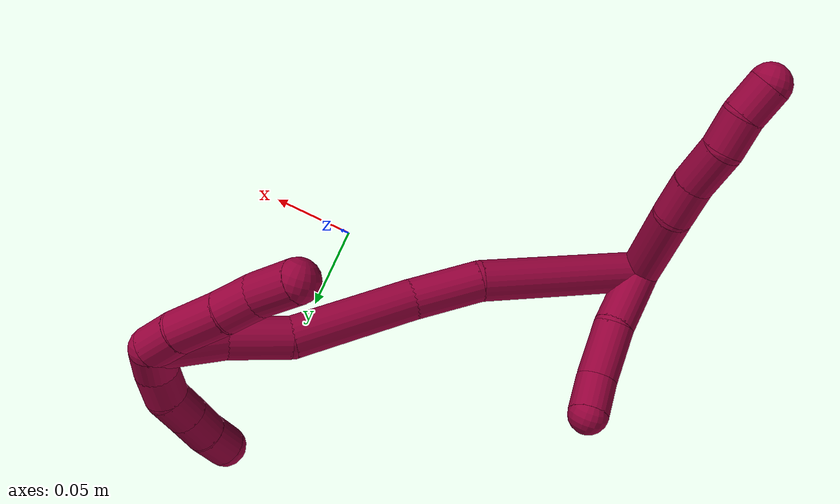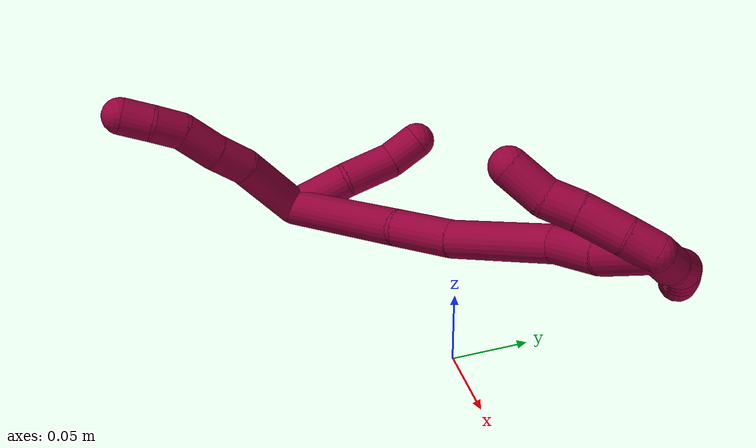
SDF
<sdf version="1.7">
 <world name="default">
  <model name="8">
   <static>0</static>
   <link name="8">
    <collision name="collision-cylinder-e_1_2_8">
     <pose>0.00603 -0.016203 -0.021461 2.49489 0.220593 0.638351</pose>
     <geometry><cylinder><radius>0.0125</radius><length>0.055117</length></cylinder></geometry>
     <surface>
      <friction><ode><mu>1.16</mu><mu2>1.16</mu2><slip1>0</slip1><slip2>0</slip2></ode></friction>
      <contact><ode><kp>1e+06</kp><kd>1</kd><max_vel>0</max_vel><min_depth>0.001</min_depth></ode></contact>
     </surface>
    </collision>
    <visual name="visual-cylinder-e_1_2_8">
     <pose>0.00603 -0.016203 -0.021461 2.49489 0.220593 0.638351</pose>
     <geometry><cylinder><radius>0.0125</radius><length>0.055117</length></cylinder></geometry>
     <material><ambient>0.584314 0 0.227451 1</ambient></material>
    </visual>
    <collision name="collision-cylinder-e_2_8_9">
     <pose>0.012882 -0.037883 -0.054023 2.68325 0.066303 0.282444</pose>
     <geometry><cylinder><radius>0.0125</radius><length>0.024813</length></cylinder></geometry>
     <surface>
      <friction><ode><mu>1.16</mu><mu2>1.16</mu2><slip1>0</slip1><slip2>0</slip2></ode></friction>
      <contact><ode><kp>1e+06</kp><kd>1</kd><max_vel>0</max_vel><min_depth>0.001</min_depth></ode></contact>
     </surface>
    </collision>
    <visual name="visual-cylinder-e_2_8_9">
     <pose>0.012882 -0.037883 -0.054023 2.68325 0.066303 0.282444</pose>
     <geometry><cylinder><radius>0.0125</radius><length>0.024813</length></cylinder></geometry>
     <material><ambient>0.584314 0 0.227451 1</ambient></material>
    </visual>
    <collision name="collision-cylinder-e_3_9_10">
     <pose>0.013728 -0.050895 -0.0769 2.57246 0.001703 0.005822</pose>
     <geometry><cylinder><radius>0.0125</radius><length>0.02796</length></cylinder></geometry>
     <surface>
      <friction><ode><mu>1.16</mu><mu2>1.16</mu2><slip1>0</slip1><slip2>0</slip2></ode></friction>
      <contact><ode><kp>1e+06</kp><kd>1</kd><max_vel>0</max_vel><min_depth>0.001</min_depth></ode></contact>
     </surface>
    </collision>
    <visual name="visual-cylinder-e_3_9_10">
     <pose>0.013728 -0.050895 -0.0769 2.57246 0.001703 0.005822</pose>
     <geometry><cylinder><radius>0.0125</radius><length>0.02796</length></cylinder></geometry>
     <material><ambient>0.584314 0 0.227451 1</ambient></material>
    </visual>
    <collision name="collision-cylinder-e_4_10_11">
     <pose>0.013363 -0.061279 -0.099012 2.87244 -0.036252 -0.266193</pose>
     <geometry><cylinder><radius>0.0125</radius><length>0.021457</length></cylinder></geometry>
     <surface>
      <friction><ode><mu>1.16</mu><mu2>1.16</mu2><slip1>0</slip1><slip2>0</slip2></ode></friction>
      <contact><ode><kp>1e+06</kp><kd>1</kd><max_vel>0</max_vel><min_depth>0.001</min_depth></ode></contact>
     </surface>
    </collision>
    <visual name="visual-cylinder-e_4_10_11">
     <pose>0.013363 -0.061279 -0.099012 2.87244 -0.036252 -0.266193</pose>
     <geometry><cylinder><radius>0.0125</radius><length>0.021457</length></cylinder></geometry>
     <material><ambient>0.584314 0 0.227451 1</ambient></material>
    </visual>
    <collision name="collision-cylinder-e_5_11_6">
     <pose>0.010302 -0.066539 -0.119028 2.8977 -0.261682 -1.64191</pose>
     <geometry><cylinder><radius>0.0125</radius><length>0.020653</length></cylinder></geometry>
     <surface>
      <friction><ode><mu>1.16</mu><mu2>1.16</mu2><slip1>0</slip1><slip2>0</slip2></ode></friction>
      <contact><ode><kp>1e+06</kp><kd>1</kd><max_vel>0</max_vel><min_depth>0.001</min_depth></ode></contact>
     </surface>
    </collision>
    <visual name="visual-cylinder-e_5_11_6">
     <pose>0.010302 -0.066539 -0.119028 2.8977 -0.261682 -1.64191</pose>
     <geometry><cylinder><radius>0.0125</radius><length>0.020653</length></cylinder></geometry>
     <material><ambient>0.584314 0 0.227451 1</ambient></material>
    </visual>
    <collision name="collision-cylinder-e_1_2_12">
     <pose>0.007649 -0.009963 0.01664 0.539491 0.375659 0.105006</pose>
     <geometry><cylinder><radius>0.0125</radius><length>0.041697</length></cylinder></geometry>
     <surface>
      <friction><ode><mu>1.16</mu><mu2>1.16</mu2><slip1>0</slip1><slip2>0</slip2></ode></friction>
      <contact><ode><kp>1e+06</kp><kd>1</kd><max_vel>0</max_vel><min_depth>0.001</min_depth></ode></contact>
     </surface>
    </collision>
    <visual name="visual-cylinder-e_1_2_12">
     <pose>0.007649 -0.009963 0.01664 0.539491 0.375659 0.105006</pose>
     <geometry><cylinder><radius>0.0125</radius><length>0.041697</length></cylinder></geometry>
     <material><ambient>0.584314 0 0.227451 1</ambient></material>
    </visual>
    <collision name="collision-cylinder-e_2_12_13">
     <pose>0.018478 -0.026732 0.048972 0.409244 0.183823 0.038251</pose>
     <geometry><cylinder><radius>0.0125</radius><length>0.034795</length></cylinder></geometry>
     <surface>
      <friction><ode><mu>1.16</mu><mu2>1.16</mu2><slip1>0</slip1><slip2>0</slip2></ode></friction>
      <contact><ode><kp>1e+06</kp><kd>1</kd><max_vel>0</max_vel><min_depth>0.001</min_depth></ode></contact>
     </surface>
    </collision>
    <visual name="visual-cylinder-e_2_12_13">
     <pose>0.018478 -0.026732 0.048972 0.409244 0.183823 0.038251</pose>
     <geometry><cylinder><radius>0.0125</radius><length>0.034795</length></cylinder></geometry>
     <material><ambient>0.584314 0 0.227451 1</ambient></material>
    </visual>
    <collision name="collision-cylinder-e_3_13_5">
     <pose>0.024495 -0.040706 0.073537 0.679477 0.243761 0.086531</pose>
     <geometry><cylinder><radius>0.0125</radius><length>0.023508</length></cylinder></geometry>
     <surface>
      <friction><ode><mu>1.16</mu><mu2>1.16</mu2><slip1>0</slip1><slip2>0</slip2></ode></friction>
      <contact><ode><kp>1e+06</kp><kd>1</kd><max_vel>0</max_vel><min_depth>0.001</min_depth></ode></contact>
     </surface>
    </collision>
    <visual name="visual-cylinder-e_3_13_5">
     <pose>0.024495 -0.040706 0.073537 0.679477 0.243761 0.086531</pose>
     <geometry><cylinder><radius>0.0125</radius><length>0.023508</length></cylinder></geometry>
     <material><ambient>0.584314 0 0.227451 1</ambient></material>
    </visual>
    <collision name="collision-cylinder-e_1_2_14">
     <pose>0.050523 -9.1e-05 0.015357 0.005904 1.2757 0.004376</pose>
     <geometry><cylinder><radius>0.0125</radius><length>0.105611</length></cylinder></geometry>
     <surface>
      <friction><ode><mu>1.16</mu><mu2>1.16</mu2><slip1>0</slip1><slip2>0</slip2></ode></friction>
      <contact><ode><kp>1e+06</kp><kd>1</kd><max_vel>0</max_vel><min_depth>0.001</min_depth></ode></contact>
     </surface>
    </collision>
    <visual name="visual-cylinder-e_1_2_14">
     <pose>0.050523 -9.1e-05 0.015357 0.005904 1.2757 0.004376</pose>
     <geometry><cylinder><radius>0.0125</radius><length>0.105611</length></cylinder></geometry>
     <material><ambient>0.584314 0 0.227451 1</ambient></material>
    </visual>
    <collision name="collision-cylinder-e_2_14_15">
     <pose>0.119061 0.001024 0.041284 -0.113581 1.03739 -0.064882</pose>
     <geometry><cylinder><radius>0.0125</radius><length>0.041843</length></cylinder></geometry>
     <surface>
      <friction><ode><mu>1.16</mu><mu2>1.16</mu2><slip1>0</slip1><slip2>0</slip2></ode></friction>
      <contact><ode><kp>1e+06</kp><kd>1</kd><max_vel>0</max_vel><min_depth>0.001</min_depth></ode></contact>
     </surface>
    </collision>
    <visual name="visual-cylinder-e_2_14_15">
     <pose>0.119061 0.001024 0.041284 -0.113581 1.03739 -0.064882</pose>
     <geometry><cylinder><radius>0.0125</radius><length>0.041843</length></cylinder></geometry>
     <material><ambient>0.584314 0 0.227451 1</ambient></material>
    </visual>
    <collision name="collision-cylinder-e_3_15_16">
     <pose>0.169397 -0.000796 0.070306 0.16255 1.04631 0.09389</pose>
     <geometry><cylinder><radius>0.0125</radius><length>0.074682</length></cylinder></geometry>
     <surface>
      <friction><ode><mu>1.16</mu><mu2>1.16</mu2><slip1>0</slip1><slip2>0</slip2></ode></friction>
      <contact><ode><kp>1e+06</kp><kd>1</kd><max_vel>0</max_vel><min_depth>0.001</min_depth></ode></contact>
     </surface>
    </collision>
    <visual name="visual-cylinder-e_3_15_16">
     <pose>0.169397 -0.000796 0.070306 0.16255 1.04631 0.09389</pose>
     <geometry><cylinder><radius>0.0125</radius><length>0.074682</length></cylinder></geometry>
     <material><ambient>0.584314 0 0.227451 1</ambient></material>
    </visual>
    <collision name="collision-cylinder-e_4_16_17">
     <pose>0.219715 -0.003255 0.09302 -0.132304 1.33631 -0.104479</pose>
     <geometry><cylinder><radius>0.0125</radius><length>0.037004</length></cylinder></geometry>
     <surface>
      <friction><ode><mu>1.16</mu><mu2>1.16</mu2><slip1>0</slip1><slip2>0</slip2></ode></friction>
      <contact><ode><kp>1e+06</kp><kd>1</kd><max_vel>0</max_vel><min_depth>0.001</min_depth></ode></contact>
     </surface>
    </collision>
    <visual name="visual-cylinder-e_4_16_17">
     <pose>0.219715 -0.003255 0.09302 -0.132304 1.33631 -0.104479</pose>
     <geometry><cylinder><radius>0.0125</radius><length>0.037004</length></cylinder></geometry>
     <material><ambient>0.584314 0 0.227451 1</ambient></material>
    </visual>
    <collision name="collision-cylinder-e_5_17_1">
     <pose>0.256933 -0.006709 0.102914 0.619926 1.22519 0.442808</pose>
     <geometry><cylinder><radius>0.0125</radius><length>0.04086</length></cylinder></geometry>
     <surface>
      <friction><ode><mu>1.16</mu><mu2>1.16</mu2><slip1>0</slip1><slip2>0</slip2></ode></friction>
      <contact><ode><kp>1e+06</kp><kd>1</kd><max_vel>0</max_vel><min_depth>0.001</min_depth></ode></contact>
     </surface>
    </collision>
    <visual name="visual-cylinder-e_5_17_1">
     <pose>0.256933 -0.006709 0.102914 0.619926 1.22519 0.442808</pose>
     <geometry><cylinder><radius>0.0125</radius><length>0.04086</length></cylinder></geometry>
     <material><ambient>0.584314 0 0.227451 1</ambient></material>
    </visual>
    <collision name="collision-cylinder-e_1_1_18">
     <pose>0.271212 -0.015419 0.10094 2.58921 -0.50518 -1.47731</pose>
     <geometry><cylinder><radius>0.0125</radius><length>0.020425</length></cylinder></geometry>
     <surface>
      <friction><ode><mu>1.16</mu><mu2>1.16</mu2><slip1>0</slip1><slip2>0</slip2></ode></friction>
      <contact><ode><kp>1e+06</kp><kd>1</kd><max_vel>0</max_vel><min_depth>0.001</min_depth></ode></contact>
     </surface>
    </collision>
    <visual name="visual-cylinder-e_1_1_18">
     <pose>0.271212 -0.015419 0.10094 2.58921 -0.50518 -1.47731</pose>
     <geometry><cylinder><radius>0.0125</radius><length>0.020425</length></cylinder></geometry>
     <material><ambient>0.584314 0 0.227451 1</ambient></material>
    </visual>
    <collision name="collision-cylinder-e_2_18_19">
     <pose>0.257201 -0.026312 0.08326 2.58959 -0.654064 -1.75019</pose>
     <geometry><cylinder><radius>0.0125</radius><length>0.029809</length></cylinder></geometry>
     <surface>
      <friction><ode><mu>1.16</mu><mu2>1.16</mu2><slip1>0</slip1><slip2>0</slip2></ode></friction>
      <contact><ode><kp>1e+06</kp><kd>1</kd><max_vel>0</max_vel><min_depth>0.001</min_depth></ode></contact>
     </surface>
    </collision>
    <visual name="visual-cylinder-e_2_18_19">
     <pose>0.257201 -0.026312 0.08326 2.58959 -0.654064 -1.75019</pose>
     <geometry><cylinder><radius>0.0125</radius><length>0.029809</length></cylinder></geometry>
     <material><ambient>0.584314 0 0.227451 1</ambient></material>
    </visual>
    <collision name="collision-cylinder-e_3_19_20">
     <pose>0.241384 -0.036009 0.0654 2.71977 -0.669011 -2.0374</pose>
     <geometry><cylinder><radius>0.0125</radius><length>0.021766</length></cylinder></geometry>
     <surface>
      <friction><ode><mu>1.16</mu><mu2>1.16</mu2><slip1>0</slip1><slip2>0</slip2></ode></friction>
      <contact><ode><kp>1e+06</kp><kd>1</kd><max_vel>0</max_vel><min_depth>0.001</min_depth></ode></contact>
     </surface>
    </collision>
    <visual name="visual-cylinder-e_3_19_20">
     <pose>0.241384 -0.036009 0.0654 2.71977 -0.669011 -2.0374</pose>
     <geometry><cylinder><radius>0.0125</radius><length>0.021766</length></cylinder></geometry>
     <material><ambient>0.584314 0 0.227451 1</ambient></material>
    </visual>
    <collision name="collision-cylinder-e_4_20_4">
     <pose>0.227573 -0.048073 0.049084 2.35383 -0.528641 -1.15449</pose>
     <geometry><cylinder><radius>0.0125</radius><length>0.028</length></cylinder></geometry>
     <surface>
      <friction><ode><mu>1.16</mu><mu2>1.16</mu2><slip1>0</slip1><slip2>0</slip2></ode></friction>
      <contact><ode><kp>1e+06</kp><kd>1</kd><max_vel>0</max_vel><min_depth>0.001</min_depth></ode></contact>
     </surface>
    </collision>
    <visual name="visual-cylinder-e_4_20_4">
     <pose>0.227573 -0.048073 0.049084 2.35383 -0.528641 -1.15449</pose>
     <geometry><cylinder><radius>0.0125</radius><length>0.028</length></cylinder></geometry>
     <material><ambient>0.584314 0 0.227451 1</ambient></material>
    </visual>
    <collision name="collision-cylinder-e_1_1_21">
     <pose>0.272683 -0.005791 0.11652 -0.554655 -0.354567 0.101915</pose>
     <geometry><cylinder><radius>0.0125</radius><length>0.02</length></cylinder></geometry>
     <surface>
      <friction><ode><mu>1.16</mu><mu2>1.16</mu2><slip1>0</slip1><slip2>0</slip2></ode></friction>
      <contact><ode><kp>1e+06</kp><kd>1</kd><max_vel>0</max_vel><min_depth>0.001</min_depth></ode></contact>
     </surface>
    </collision>
    <visual name="visual-cylinder-e_1_1_21">
     <pose>0.272683 -0.005791 0.11652 -0.554655 -0.354567 0.101915</pose>
     <geometry><cylinder><radius>0.0125</radius><length>0.02</length></cylinder></geometry>
     <material><ambient>0.584314 0 0.227451 1</ambient></material>
    </visual>
    <collision name="collision-cylinder-e_2_21_22">
     <pose>0.264157 0.001722 0.132728 -0.302976 -0.529837 0.082783</pose>
     <geometry><cylinder><radius>0.0125</radius><length>0.02</length></cylinder></geometry>
     <surface>
      <friction><ode><mu>1.16</mu><mu2>1.16</mu2><slip1>0</slip1><slip2>0</slip2></ode></friction>
      <contact><ode><kp>1e+06</kp><kd>1</kd><max_vel>0</max_vel><min_depth>0.001</min_depth></ode></contact>
     </surface>
    </collision>
    <visual name="visual-cylinder-e_2_21_22">
     <pose>0.264157 0.001722 0.132728 -0.302976 -0.529837 0.082783</pose>
     <geometry><cylinder><radius>0.0125</radius><length>0.02</length></cylinder></geometry>
     <material><ambient>0.584314 0 0.227451 1</ambient></material>
    </visual>
    <collision name="collision-cylinder-e_3_22_23">
     <pose>0.251668 0.007527 0.146818 -0.504119 -0.838366 0.228513</pose>
     <geometry><cylinder><radius>0.0125</radius><length>0.02</length></cylinder></geometry>
     <surface>
      <friction><ode><mu>1.16</mu><mu2>1.16</mu2><slip1>0</slip1><slip2>0</slip2></ode></friction>
      <contact><ode><kp>1e+06</kp><kd>1</kd><max_vel>0</max_vel><min_depth>0.001</min_depth></ode></contact>
     </surface>
    </collision>
    <visual name="visual-cylinder-e_3_22_23">
     <pose>0.251668 0.007527 0.146818 -0.504119 -0.838366 0.228513</pose>
     <geometry><cylinder><radius>0.0125</radius><length>0.02</length></cylinder></geometry>
     <material><ambient>0.584314 0 0.227451 1</ambient></material>
    </visual>
    <collision name="collision-cylinder-e_4_23_24">
     <pose>0.23685 0.013869 0.158658 -0.479594 -0.830461 0.214755</pose>
     <geometry><cylinder><radius>0.0125</radius><length>0.02</length></cylinder></geometry>
     <surface>
      <friction><ode><mu>1.16</mu><mu2>1.16</mu2><slip1>0</slip1><slip2>0</slip2></ode></friction>
      <contact><ode><kp>1e+06</kp><kd>1</kd><max_vel>0</max_vel><min_depth>0.001</min_depth></ode></contact>
     </surface>
    </collision>
    <visual name="visual-cylinder-e_4_23_24">
     <pose>0.23685 0.013869 0.158658 -0.479594 -0.830461 0.214755</pose>
     <geometry><cylinder><radius>0.0125</radius><length>0.02</length></cylinder></geometry>
     <material><ambient>0.584314 0 0.227451 1</ambient></material>
    </visual>
    <collision name="collision-cylinder-e_5_24_3">
     <pose>0.221791 0.020844 0.169756 -0.646899 -0.875115 0.3111</pose>
     <geometry><cylinder><radius>0.0125</radius><length>0.02</length></cylinder></geometry>
     <surface>
      <friction><ode><mu>1.16</mu><mu2>1.16</mu2><slip1>0</slip1><slip2>0</slip2></ode></friction>
      <contact><ode><kp>1e+06</kp><kd>1</kd><max_vel>0</max_vel><min_depth>0.001</min_depth></ode></contact>
     </surface>
    </collision>
    <visual name="visual-cylinder-e_5_24_3">
     <pose>0.221791 0.020844 0.169756 -0.646899 -0.875115 0.3111</pose>
     <geometry><cylinder><radius>0.0125</radius><length>0.02</length></cylinder></geometry>
     <material><ambient>0.584314 0 0.227451 1</ambient></material>
    </visual>
    <collision name="collision-sphere-3">
     <pose>0.214115 0.024707 0.17487 0 -0 0</pose>
     <geometry><sphere><radius>0.0125</radius></sphere></geometry>
     <surface>
      <friction><ode><mu>1.16</mu><mu2>1.16</mu2><slip1>0</slip1><slip2>0</slip2></ode></friction>
      <contact><ode><kp>1e+06</kp><kd>1</kd><max_vel>0</max_vel><min_depth>0.001</min_depth></ode></contact>
     </surface>
    </collision>
    <visual name="visual-sphere-3">
     <pose>0.214115 0.024707 0.17487 0 -0 0</pose>
     <geometry><sphere><radius>0.0125</radius></sphere></geometry>
     <material><ambient>0.584314 0 0.227451 1</ambient></material>
    </visual>
    <collision name="collision-sphere-24">
     <pose>0.229467 0.016982 0.164642 0 -0 0</pose>
     <geometry><sphere><radius>0.0125</radius></sphere></geometry>
     <surface>
      <friction><ode><mu>1.16</mu><mu2>1.16</mu2><slip1>0</slip1><slip2>0</slip2></ode></friction>
      <contact><ode><kp>1e+06</kp><kd>1</kd><max_vel>0</max_vel><min_depth>0.001</min_depth></ode></contact>
     </surface>
    </collision>
    <visual name="visual-sphere-24">
     <pose>0.229467 0.016982 0.164642 0 -0 0</pose>
     <geometry><sphere><radius>0.0125</radius></sphere></geometry>
     <material><ambient>0.584314 0 0.227451 1</ambient></material>
    </visual>
    <collision name="collision-sphere-23">
     <pose>0.244232 0.010757 0.152673 0 -0 0</pose>
     <geometry><sphere><radius>0.0125</radius></sphere></geometry>
     <surface>
      <friction><ode><mu>1.16</mu><mu2>1.16</mu2><slip1>0</slip1><slip2>0</slip2></ode></friction>
      <contact><ode><kp>1e+06</kp><kd>1</kd><max_vel>0</max_vel><min_depth>0.001</min_depth></ode></contact>
     </surface>
    </collision>
    <visual name="visual-sphere-23">
     <pose>0.244232 0.010757 0.152673 0 -0 0</pose>
     <geometry><sphere><radius>0.0125</radius></sphere></geometry>
     <material><ambient>0.584314 0 0.227451 1</ambient></material>
    </visual>
    <collision name="collision-sphere-22">
     <pose>0.259103 0.004297 0.140963 0 -0 0</pose>
     <geometry><sphere><radius>0.0125</radius></sphere></geometry>
     <surface>
      <friction><ode><mu>1.16</mu><mu2>1.16</mu2><slip1>0</slip1><slip2>0</slip2></ode></friction>
      <contact><ode><kp>1e+06</kp><kd>1</kd><max_vel>0</max_vel><min_depth>0.001</min_depth></ode></contact>
     </surface>
    </collision>
    <visual name="visual-sphere-22">
     <pose>0.259103 0.004297 0.140963 0 -0 0</pose>
     <geometry><sphere><radius>0.0125</radius></sphere></geometry>
     <material><ambient>0.584314 0 0.227451 1</ambient></material>
    </visual>
    <collision name="collision-sphere-21">
     <pose>0.269211 -0.000852 0.124492 0 -0 0</pose>
     <geometry><sphere><radius>0.0125</radius></sphere></geometry>
     <surface>
      <friction><ode><mu>1.16</mu><mu2>1.16</mu2><slip1>0</slip1><slip2>0</slip2></ode></friction>
      <contact><ode><kp>1e+06</kp><kd>1</kd><max_vel>0</max_vel><min_depth>0.001</min_depth></ode></contact>
     </surface>
    </collision>
    <visual name="visual-sphere-21">
     <pose>0.269211 -0.000852 0.124492 0 -0 0</pose>
     <geometry><sphere><radius>0.0125</radius></sphere></geometry>
     <material><ambient>0.584314 0 0.227451 1</ambient></material>
    </visual>
    <collision name="collision-sphere-4">
     <pose>0.220512 -0.056641 0.040556 0 -0 0</pose>
     <geometry><sphere><radius>0.0125</radius></sphere></geometry>
     <surface>
      <friction><ode><mu>1.16</mu><mu2>1.16</mu2><slip1>0</slip1><slip2>0</slip2></ode></friction>
      <contact><ode><kp>1e+06</kp><kd>1</kd><max_vel>0</max_vel><min_depth>0.001</min_depth></ode></contact>
     </surface>
    </collision>
    <visual name="visual-sphere-4">
     <pose>0.220512 -0.056641 0.040556 0 -0 0</pose>
     <geometry><sphere><radius>0.0125</radius></sphere></geometry>
     <material><ambient>0.584314 0 0.227451 1</ambient></material>
    </visual>
    <collision name="collision-sphere-20">
     <pose>0.234634 -0.039505 0.057612 0 -0 0</pose>
     <geometry><sphere><radius>0.0125</radius></sphere></geometry>
     <surface>
      <friction><ode><mu>1.16</mu><mu2>1.16</mu2><slip1>0</slip1><slip2>0</slip2></ode></friction>
      <contact><ode><kp>1e+06</kp><kd>1</kd><max_vel>0</max_vel><min_depth>0.001</min_depth></ode></contact>
     </surface>
    </collision>
    <visual name="visual-sphere-20">
     <pose>0.234634 -0.039505 0.057612 0 -0 0</pose>
     <geometry><sphere><radius>0.0125</radius></sphere></geometry>
     <material><ambient>0.584314 0 0.227451 1</ambient></material>
    </visual>
    <collision name="collision-sphere-6">
     <pose>0.007631 -0.068948 -0.128708 0 -0 0</pose>
     <geometry><sphere><radius>0.0125</radius></sphere></geometry>
     <surface>
      <friction><ode><mu>1.16</mu><mu2>1.16</mu2><slip1>0</slip1><slip2>0</slip2></ode></friction>
      <contact><ode><kp>1e+06</kp><kd>1</kd><max_vel>0</max_vel><min_depth>0.001</min_depth></ode></contact>
     </surface>
    </collision>
    <visual name="visual-sphere-6">
     <pose>0.007631 -0.068948 -0.128708 0 -0 0</pose>
     <geometry><sphere><radius>0.0125</radius></sphere></geometry>
     <material><ambient>0.584314 0 0.227451 1</ambient></material>
    </visual>
    <collision name="collision-sphere-11">
     <pose>0.012974 -0.06413 -0.109348 0 -0 0</pose>
     <geometry><sphere><radius>0.0125</radius></sphere></geometry>
     <surface>
      <friction><ode><mu>1.16</mu><mu2>1.16</mu2><slip1>0</slip1><slip2>0</slip2></ode></friction>
      <contact><ode><kp>1e+06</kp><kd>1</kd><max_vel>0</max_vel><min_depth>0.001</min_depth></ode></contact>
     </surface>
    </collision>
    <visual name="visual-sphere-11">
     <pose>0.012974 -0.06413 -0.109348 0 -0 0</pose>
     <geometry><sphere><radius>0.0125</radius></sphere></geometry>
     <material><ambient>0.584314 0 0.227451 1</ambient></material>
    </visual>
    <collision name="collision-sphere-10">
     <pose>0.013751 -0.058428 -0.088677 0 -0 0</pose>
     <geometry><sphere><radius>0.0125</radius></sphere></geometry>
     <surface>
      <friction><ode><mu>1.16</mu><mu2>1.16</mu2><slip1>0</slip1><slip2>0</slip2></ode></friction>
      <contact><ode><kp>1e+06</kp><kd>1</kd><max_vel>0</max_vel><min_depth>0.001</min_depth></ode></contact>
     </surface>
    </collision>
    <visual name="visual-sphere-10">
     <pose>0.013751 -0.058428 -0.088677 0 -0 0</pose>
     <geometry><sphere><radius>0.0125</radius></sphere></geometry>
     <material><ambient>0.584314 0 0.227451 1</ambient></material>
    </visual>
    <collision name="collision-sphere-9">
     <pose>0.013704 -0.043361 -0.065124 0 -0 0</pose>
     <geometry><sphere><radius>0.0125</radius></sphere></geometry>
     <surface>
      <friction><ode><mu>1.16</mu><mu2>1.16</mu2><slip1>0</slip1><slip2>0</slip2></ode></friction>
      <contact><ode><kp>1e+06</kp><kd>1</kd><max_vel>0</max_vel><min_depth>0.001</min_depth></ode></contact>
     </surface>
    </collision>
    <visual name="visual-sphere-9">
     <pose>0.013704 -0.043361 -0.065124 0 -0 0</pose>
     <geometry><sphere><radius>0.0125</radius></sphere></geometry>
     <material><ambient>0.584314 0 0.227451 1</ambient></material>
    </visual>
    <collision name="collision-sphere-2">
     <geometry><sphere><radius>0.0125</radius></sphere></geometry>
     <surface>
      <friction><ode><mu>1.16</mu><mu2>1.16</mu2><slip1>0</slip1><slip2>0</slip2></ode></friction>
      <contact><ode><kp>1e+06</kp><kd>1</kd><max_vel>0</max_vel><min_depth>0.001</min_depth></ode></contact>
     </surface>
    </collision>
    <visual name="visual-sphere-2">
     <geometry><sphere><radius>0.0125</radius></sphere></geometry>
     <material><ambient>0.584314 0 0.227451 1</ambient></material>
    </visual>
    <collision name="collision-sphere-19">
     <pose>0.248133 -0.032514 0.073189 0 -0 0</pose>
     <geometry><sphere><radius>0.0125</radius></sphere></geometry>
     <surface>
      <friction><ode><mu>1.16</mu><mu2>1.16</mu2><slip1>0</slip1><slip2>0</slip2></ode></friction>
      <contact><ode><kp>1e+06</kp><kd>1</kd><max_vel>0</max_vel><min_depth>0.001</min_depth></ode></contact>
     </surface>
    </collision>
    <visual name="visual-sphere-19">
     <pose>0.248133 -0.032514 0.073189 0 -0 0</pose>
     <geometry><sphere><radius>0.0125</radius></sphere></geometry>
     <material><ambient>0.584314 0 0.227451 1</ambient></material>
    </visual>
    <collision name="collision-sphere-8">
     <pose>0.01206 -0.032406 -0.042921 0 -0 0</pose>
     <geometry><sphere><radius>0.0125</radius></sphere></geometry>
     <surface>
      <friction><ode><mu>1.16</mu><mu2>1.16</mu2><slip1>0</slip1><slip2>0</slip2></ode></friction>
      <contact><ode><kp>1e+06</kp><kd>1</kd><max_vel>0</max_vel><min_depth>0.001</min_depth></ode></contact>
     </surface>
    </collision>
    <visual name="visual-sphere-8">
     <pose>0.01206 -0.032406 -0.042921 0 -0 0</pose>
     <geometry><sphere><radius>0.0125</radius></sphere></geometry>
     <material><ambient>0.584314 0 0.227451 1</ambient></material>
    </visual>
    <collision name="collision-sphere-12">
     <pose>0.015298 -0.019926 0.03328 0 -0 0</pose>
     <geometry><sphere><radius>0.0125</radius></sphere></geometry>
     <surface>
      <friction><ode><mu>1.16</mu><mu2>1.16</mu2><slip1>0</slip1><slip2>0</slip2></ode></friction>
      <contact><ode><kp>1e+06</kp><kd>1</kd><max_vel>0</max_vel><min_depth>0.001</min_depth></ode></contact>
     </surface>
    </collision>
    <visual name="visual-sphere-12">
     <pose>0.015298 -0.019926 0.03328 0 -0 0</pose>
     <geometry><sphere><radius>0.0125</radius></sphere></geometry>
     <material><ambient>0.584314 0 0.227451 1</ambient></material>
    </visual>
    <collision name="collision-sphere-13">
     <pose>0.021658 -0.033538 0.064664 0 -0 0</pose>
     <geometry><sphere><radius>0.0125</radius></sphere></geometry>
     <surface>
      <friction><ode><mu>1.16</mu><mu2>1.16</mu2><slip1>0</slip1><slip2>0</slip2></ode></friction>
      <contact><ode><kp>1e+06</kp><kd>1</kd><max_vel>0</max_vel><min_depth>0.001</min_depth></ode></contact>
     </surface>
    </collision>
    <visual name="visual-sphere-13">
     <pose>0.021658 -0.033538 0.064664 0 -0 0</pose>
     <geometry><sphere><radius>0.0125</radius></sphere></geometry>
     <material><ambient>0.584314 0 0.227451 1</ambient></material>
    </visual>
    <collision name="collision-sphere-5">
     <pose>0.027332 -0.047874 0.08241 0 -0 0</pose>
     <geometry><sphere><radius>0.0125</radius></sphere></geometry>
     <surface>
      <friction><ode><mu>1.16</mu><mu2>1.16</mu2><slip1>0</slip1><slip2>0</slip2></ode></friction>
      <contact><ode><kp>1e+06</kp><kd>1</kd><max_vel>0</max_vel><min_depth>0.001</min_depth></ode></contact>
     </surface>
    </collision>
    <visual name="visual-sphere-5">
     <pose>0.027332 -0.047874 0.08241 0 -0 0</pose>
     <geometry><sphere><radius>0.0125</radius></sphere></geometry>
     <material><ambient>0.584314 0 0.227451 1</ambient></material>
    </visual>
    <collision name="collision-sphere-14">
     <pose>0.101046 -0.000181 0.030715 0 -0 0</pose>
     <geometry><sphere><radius>0.0125</radius></sphere></geometry>
     <surface>
      <friction><ode><mu>1.16</mu><mu2>1.16</mu2><slip1>0</slip1><slip2>0</slip2></ode></friction>
      <contact><ode><kp>1e+06</kp><kd>1</kd><max_vel>0</max_vel><min_depth>0.001</min_depth></ode></contact>
     </surface>
    </collision>
    <visual name="visual-sphere-14">
     <pose>0.101046 -0.000181 0.030715 0 -0 0</pose>
     <geometry><sphere><radius>0.0125</radius></sphere></geometry>
     <material><ambient>0.584314 0 0.227451 1</ambient></material>
    </visual>
    <collision name="collision-sphere-15">
     <pose>0.137076 0.00223 0.051853 0 -0 0</pose>
     <geometry><sphere><radius>0.0125</radius></sphere></geometry>
     <surface>
      <friction><ode><mu>1.16</mu><mu2>1.16</mu2><slip1>0</slip1><slip2>0</slip2></ode></friction>
      <contact><ode><kp>1e+06</kp><kd>1</kd><max_vel>0</max_vel><min_depth>0.001</min_depth></ode></contact>
     </surface>
    </collision>
    <visual name="visual-sphere-15">
     <pose>0.137076 0.00223 0.051853 0 -0 0</pose>
     <geometry><sphere><radius>0.0125</radius></sphere></geometry>
     <material><ambient>0.584314 0 0.227451 1</ambient></material>
    </visual>
    <collision name="collision-sphere-16">
     <pose>0.201719 -0.003822 0.088759 0 -0 0</pose>
     <geometry><sphere><radius>0.0125</radius></sphere></geometry>
     <surface>
      <friction><ode><mu>1.16</mu><mu2>1.16</mu2><slip1>0</slip1><slip2>0</slip2></ode></friction>
      <contact><ode><kp>1e+06</kp><kd>1</kd><max_vel>0</max_vel><min_depth>0.001</min_depth></ode></contact>
     </surface>
    </collision>
    <visual name="visual-sphere-16">
     <pose>0.201719 -0.003822 0.088759 0 -0 0</pose>
     <geometry><sphere><radius>0.0125</radius></sphere></geometry>
     <material><ambient>0.584314 0 0.227451 1</ambient></material>
    </visual>
    <collision name="collision-sphere-17">
     <pose>0.23771 -0.002688 0.097281 0 -0 0</pose>
     <geometry><sphere><radius>0.0125</radius></sphere></geometry>
     <surface>
      <friction><ode><mu>1.16</mu><mu2>1.16</mu2><slip1>0</slip1><slip2>0</slip2></ode></friction>
      <contact><ode><kp>1e+06</kp><kd>1</kd><max_vel>0</max_vel><min_depth>0.001</min_depth></ode></contact>
     </surface>
    </collision>
    <visual name="visual-sphere-17">
     <pose>0.23771 -0.002688 0.097281 0 -0 0</pose>
     <geometry><sphere><radius>0.0125</radius></sphere></geometry>
     <material><ambient>0.584314 0 0.227451 1</ambient></material>
    </visual>
    <collision name="collision-sphere-1">
     <pose>0.276155 -0.01073 0.108548 0 -0 0</pose>
     <geometry><sphere><radius>0.0125</radius></sphere></geometry>
     <surface>
      <friction><ode><mu>1.16</mu><mu2>1.16</mu2><slip1>0</slip1><slip2>0</slip2></ode></friction>
      <contact><ode><kp>1e+06</kp><kd>1</kd><max_vel>0</max_vel><min_depth>0.001</min_depth></ode></contact>
     </surface>
    </collision>
    <visual name="visual-sphere-1">
     <pose>0.276155 -0.01073 0.108548 0 -0 0</pose>
     <geometry><sphere><radius>0.0125</radius></sphere></geometry>
     <material><ambient>0.584314 0 0.227451 1</ambient></material>
    </visual>
    <collision name="collision-sphere-18">
     <pose>0.26627 -0.020109 0.093332 0 -0 0</pose>
     <geometry><sphere><radius>0.0125</radius></sphere></geometry>
     <surface>
      <friction><ode><mu>1.16</mu><mu2>1.16</mu2><slip1>0</slip1><slip2>0</slip2></ode></friction>
      <contact><ode><kp>1e+06</kp><kd>1</kd><max_vel>0</max_vel><min_depth>0.001</min_depth></ode></contact>
     </surface>
    </collision>
    <visual name="visual-sphere-18">
     <pose>0.26627 -0.020109 0.093332 0 -0 0</pose>
     <geometry><sphere><radius>0.0125</radius></sphere></geometry>
     <material><ambient>0.584314 0 0.227451 1</ambient></material>
    </visual>
    <inertial>
     <pose>0.125928 -0.014846 0.043931 0 -0 0</pose>
     <mass>0.75</mass>
     <inertia>
      <ixx>0.000115</ixx>
      <ixy>0</ixy>
      <ixz>0</ixz>
      <iyy>0.000162</iyy>
      <iyz>0</iyz>
      <izz>-0.000117</izz>
     </inertia>
    </inertial>
   </link>
   <pose>-0.1769 -0.05597 0.012872 -1.80001 -0.373661 0.197476</pose>
  </model>
 </world>
</sdf>
